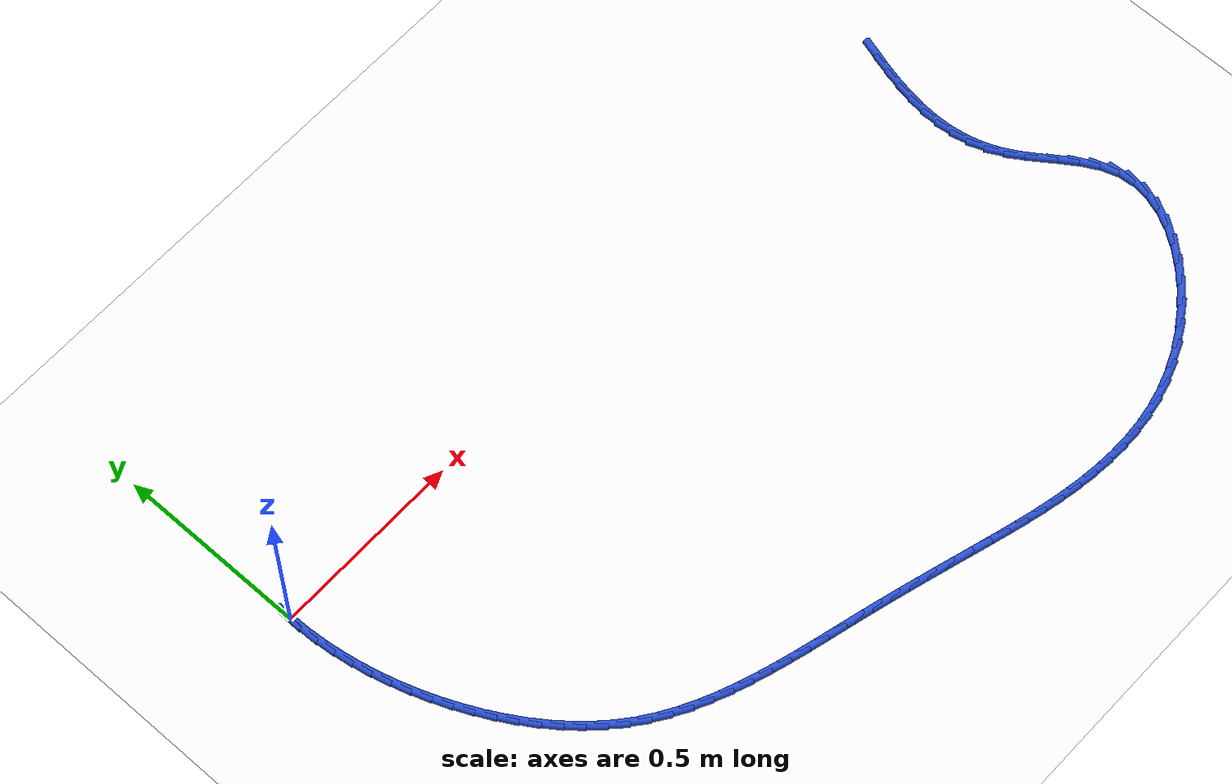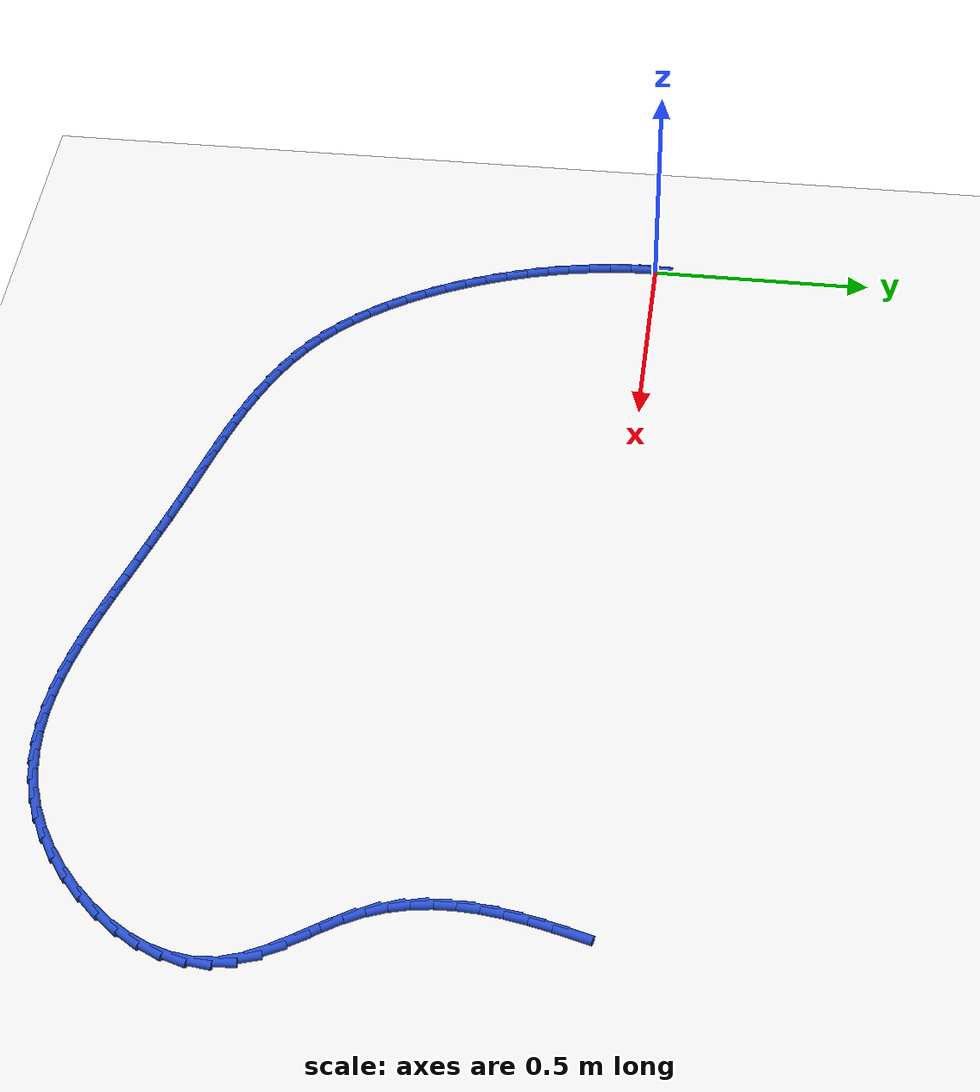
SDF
<sdf version="1.6">
 <world name="default">
  <model name="ground_plane">
   <static>1</static>
   <link name="link">
    <collision name="collision">
     <geometry><plane><normal>0 0 1</normal><size>100 100</size></plane></geometry>
     <surface><friction><ode><mu>100</mu><mu2>50</mu2></ode></friction></surface>
    </collision>
    <visual name="visual">
     <cast_shadows>0</cast_shadows>
     <geometry><plane><normal>0 0 1</normal><size>100 100</size></plane></geometry>
     <material>
      <script><uri>file://media/materials/scripts/gazebo.material</uri><name>Gazebo/WhiteGlow</name></script>
     </material>
    </visual>
   </link>
  </model>
  <model name="line">
   <link name="link_0">
    <pose>4.163336342344337e-17 -4.163336342344337e-17 0.01 0 1.57 1.5400447321798174</pose>
    <collision name="collision">
     <geometry><cylinder><radius>0.01</radius><length>0.08</length></cylinder></geometry>
    </collision>
    <visual name="visual">
     <material>
      <script><name>Gazebo/Blue</name><uri>file://media/materials/scripts/gazebo.material</uri></script>
     </material>
     <geometry><cylinder><radius>0.01</radius><length>0.08</length></cylinder></geometry>
    </visual>
   </link>
   <link name="link_76">
    <pose>2.0138386063199047 -0.006483982523473847 0.01 0 1.57 1.2808713230961957</pose>
    <collision name="collision">
     <geometry><cylinder><radius>0.01</radius><length>0.08</length></cylinder></geometry>
    </collision>
    <visual name="visual">
     <material>
      <script><name>Gazebo/Blue</name><uri>file://media/materials/scripts/gazebo.material</uri></script>
     </material>
     <geometry><cylinder><radius>0.01</radius><length>0.08</length></cylinder></geometry>
    </visual>
   </link>
   <link name="link_77">
    <pose>1.999571553621662 -0.054306861348182627 0.01 0 1.57 1.3183097221567153</pose>
    <collision name="collision">
     <geometry><cylinder><radius>0.01</radius><length>0.08</length></cylinder></geometry>
    </collision>
    <visual name="visual">
     <material>
      <script><name>Gazebo/Blue</name><uri>file://media/materials/scripts/gazebo.material</uri></script>
     </material>
     <geometry><cylinder><radius>0.01</radius><length>0.08</length></cylinder></geometry>
    </visual>
   </link>
   <link name="link_78">
    <pose>1.9874681464585988 -0.1012206851651751 0.01 0 1.57 1.3687286867723003</pose>
    <collision name="collision">
     <geometry><cylinder><radius>0.01</radius><length>0.08</length></cylinder></geometry>
    </collision>
    <visual name="visual">
     <material>
      <script><name>Gazebo/Blue</name><uri>file://media/materials/scripts/gazebo.material</uri></script>
     </material>
     <geometry><cylinder><radius>0.01</radius><length>0.08</length></cylinder></geometry>
    </visual>
   </link>
   <link name="link_79">
    <pose>1.9780312302830938 -0.14728508501709073 0.01 0 1.57 1.4332358566750991</pose>
    <collision name="collision">
     <geometry><cylinder><radius>0.01</radius><length>0.08</length></cylinder></geometry>
    </collision>
    <visual name="visual">
     <material>
      <script><name>Gazebo/Blue</name><uri>file://media/materials/scripts/gazebo.material</uri></script>
     </material>
     <geometry><cylinder><radius>0.01</radius><length>0.08</length></cylinder></geometry>
    </visual>
   </link>
   <link name="link_80">
    <pose>1.9717636505475253 -0.19255969194656558 0.01 0 1.57 1.51259677325692</pose>
    <collision name="collision">
     <geometry><cylinder><radius>0.01</radius><length>0.08</length></cylinder></geometry>
    </collision>
    <visual name="visual">
     <material>
      <script><name>Gazebo/Blue</name><uri>file://media/materials/scripts/gazebo.material</uri></script>
     </material>
     <geometry><cylinder><radius>0.01</radius><length>0.08</length></cylinder></geometry>
    </visual>
   </link>
   <link name="link_81">
    <pose>1.9691682527042726 -0.23710413699623897 0.01 0 1.57 -1.5348080290894706</pose>
    <collision name="collision">
     <geometry><cylinder><radius>0.01</radius><length>0.08</length></cylinder></geometry>
    </collision>
    <visual name="visual">
     <material>
      <script><name>Gazebo/Blue</name><uri>file://media/materials/scripts/gazebo.material</uri></script>
     </material>
     <geometry><cylinder><radius>0.01</radius><length>0.08</length></cylinder></geometry>
    </visual>
   </link>
   <link name="link_82">
    <pose>1.9707478822057145 -0.28097805120874786 0.01 0 1.57 -1.4271538708264282</pose>
    <collision name="collision">
     <geometry><cylinder><radius>0.01</radius><length>0.08</length></cylinder></geometry>
    </collision>
    <visual name="visual">
     <material>
      <script><name>Gazebo/Blue</name><uri>file://media/materials/scripts/gazebo.material</uri></script>
     </material>
     <geometry><cylinder><radius>0.01</radius><length>0.08</length></cylinder></geometry>
    </visual>
   </link>
   <link name="link_83">
    <pose>1.9770053845042295 -0.3242410656267294 0.01 0 1.57 -1.3091358136497435</pose>
    <collision name="collision">
     <geometry><cylinder><radius>0.01</radius><length>0.08</length></cylinder></geometry>
    </collision>
    <visual name="visual">
     <material>
      <script><name>Gazebo/Blue</name><uri>file://media/materials/scripts/gazebo.material</uri></script>
     </material>
     <geometry><cylinder><radius>0.01</radius><length>0.08</length></cylinder></geometry>
    </visual>
   </link>
   <link name="link_84">
    <pose>1.9884436050521967 -0.36695281129282253 0.01 0 1.57 -1.1855264503517295</pose>
    <collision name="collision">
     <geometry><cylinder><radius>0.01</radius><length>0.08</length></cylinder></geometry>
    </collision>
    <visual name="visual">
     <material>
      <script><name>Gazebo/Blue</name><uri>file://media/materials/scripts/gazebo.material</uri></script>
     </material>
     <geometry><cylinder><radius>0.01</radius><length>0.08</length></cylinder></geometry>
    </visual>
   </link>
   <link name="link_85">
    <pose>2.005565389301995 -0.4091729192496638 0.01 0 1.57 -1.062921221758552</pose>
    <collision name="collision">
     <geometry><cylinder><radius>0.01</radius><length>0.08</length></cylinder></geometry>
    </collision>
    <visual name="visual">
     <material>
      <script><name>Gazebo/Blue</name><uri>file://media/materials/scripts/gazebo.material</uri></script>
     </material>
     <geometry><cylinder><radius>0.01</radius><length>0.08</length></cylinder></geometry>
    </visual>
   </link>
   <link name="link_86">
    <pose>2.0288254391963587 -0.4509645255753192 0.01 0 1.57 -0.9749347400510502</pose>
    <collision name="collision">
     <geometry><cylinder><radius>0.01</radius><length>0.08</length></cylinder></geometry>
    </collision>
    <visual name="visual">
     <material>
      <script><name>Gazebo/Blue</name><uri>file://media/materials/scripts/gazebo.material</uri></script>
     </material>
     <geometry><cylinder><radius>0.01</radius><length>0.08</length></cylinder></geometry>
    </visual>
   </link>
   <link name="link_87">
    <pose>2.056998613192884 -0.49251306551072077 0.01 0 1.57 -0.9499197458881184</pose>
    <collision name="collision">
     <geometry><cylinder><radius>0.01</radius><length>0.08</length></cylinder></geometry>
    </collision>
    <visual name="visual">
     <material>
      <script><name>Gazebo/Blue</name><uri>file://media/materials/scripts/gazebo.material</uri></script>
     </material>
     <geometry><cylinder><radius>0.01</radius><length>0.08</length></cylinder></geometry>
    </visual>
   </link>
   <link name="link_88">
    <pose>2.086782457167427 -0.5341552107613947 0.01 0 1.57 -0.9842961640721551</pose>
    <collision name="collision">
     <geometry><cylinder><radius>0.01</radius><length>0.08</length></cylinder></geometry>
    </collision>
    <visual name="visual">
     <material>
      <script><name>Gazebo/Blue</name><uri>file://media/materials/scripts/gazebo.material</uri></script>
     </material>
     <geometry><cylinder><radius>0.01</radius><length>0.08</length></cylinder></geometry>
    </visual>
   </link>
   <link name="link_89">
    <pose>2.1147457540352805 -0.5762370074790149 0.01 0 1.57 -1.0835878134169386</pose>
    <collision name="collision">
     <geometry><cylinder><radius>0.01</radius><length>0.08</length></cylinder></geometry>
    </collision>
    <visual name="visual">
     <material>
      <script><name>Gazebo/Blue</name><uri>file://media/materials/scripts/gazebo.material</uri></script>
     </material>
     <geometry><cylinder><radius>0.01</radius><length>0.08</length></cylinder></geometry>
    </visual>
   </link>
   <link name="link_90">
    <pose>2.137457286711737 -0.6191045018152529 0.01 0 1.57 -1.262056328636429</pose>
    <collision name="collision">
     <geometry><cylinder><radius>0.01</radius><length>0.08</length></cylinder></geometry>
    </collision>
    <visual name="visual">
     <material>
      <script><name>Gazebo/Blue</name><uri>file://media/materials/scripts/gazebo.material</uri></script>
     </material>
     <geometry><cylinder><radius>0.01</radius><length>0.08</length></cylinder></geometry>
    </visual>
   </link>
   <link name="link_91">
    <pose>2.151490046479375 -0.6631027889027866 0.01 0 1.57 -1.5013290513289506</pose>
    <collision name="collision">
     <geometry><cylinder><radius>0.01</radius><length>0.08</length></cylinder></geometry>
    </collision>
    <visual name="visual">
     <material>
      <script><name>Gazebo/Blue</name><uri>file://media/materials/scripts/gazebo.material</uri></script>
     </material>
     <geometry><cylinder><radius>0.01</radius><length>0.08</length></cylinder></geometry>
    </visual>
   </link>
   <link name="link_92">
    <pose>2.154634954376019 -0.7083017325905194 0.01 0 1.57 1.4180276969786763</pose>
    <collision name="collision">
     <geometry><cylinder><radius>0.01</radius><length>0.08</length></cylinder></geometry>
    </collision>
    <visual name="visual">
     <material>
      <script><name>Gazebo/Blue</name><uri>file://media/materials/scripts/gazebo.material</uri></script>
     </material>
     <geometry><cylinder><radius>0.01</radius><length>0.08</length></cylinder></geometry>
    </visual>
   </link>
   <link name="link_93">
    <pose>2.1475809656261275 -0.7541162905916041 0.01 0 1.57 1.2315972203387082</pose>
    <collision name="collision">
     <geometry><cylinder><radius>0.01</radius><length>0.08</length></cylinder></geometry>
    </collision>
    <visual name="visual">
     <material>
      <script><name>Gazebo/Blue</name><uri>file://media/materials/scripts/gazebo.material</uri></script>
     </material>
     <geometry><cylinder><radius>0.01</radius><length>0.08</length></cylinder></geometry>
    </visual>
   </link>
   <link name="link_94">
    <pose>2.131438779992775 -0.7998661135702579 0.01 0 1.57 1.0788144934448627</pose>
    <collision name="collision">
     <geometry><cylinder><radius>0.01</radius><length>0.08</length></cylinder></geometry>
    </collision>
    <visual name="visual">
     <material>
      <script><name>Gazebo/Blue</name><uri>file://media/materials/scripts/gazebo.material</uri></script>
     </material>
     <geometry><cylinder><radius>0.01</radius><length>0.08</length></cylinder></geometry>
    </visual>
   </link>
   <link name="link_95">
    <pose>2.107319097239034 -0.844870852190695 0.01 0 1.57 0.952701599898569</pose>
    <collision name="collision">
     <geometry><cylinder><radius>0.01</radius><length>0.08</length></cylinder></geometry>
    </collision>
    <visual name="visual">
     <material>
      <script><name>Gazebo/Blue</name><uri>file://media/materials/scripts/gazebo.material</uri></script>
     </material>
     <geometry><cylinder><radius>0.01</radius><length>0.08</length></cylinder></geometry>
    </visual>
   </link>
   <link name="link_96">
    <pose>2.0763326171279792 -0.8884501571171297 0.01 0 1.57 0.8458101176707273</pose>
    <collision name="collision">
     <geometry><cylinder><radius>0.01</radius><length>0.08</length></cylinder></geometry>
    </collision>
    <visual name="visual">
     <material>
      <script><name>Gazebo/Blue</name><uri>file://media/materials/scripts/gazebo.material</uri></script>
     </material>
     <geometry><cylinder><radius>0.01</radius><length>0.08</length></cylinder></geometry>
    </visual>
   </link>
   <link name="link_97">
    <pose>2.0395900394226834 -0.9299236790137784 0.01 0 1.57 0.751685387845838</pose>
    <collision name="collision">
     <geometry><cylinder><radius>0.01</radius><length>0.08</length></cylinder></geometry>
    </collision>
    <visual name="visual">
     <material>
      <script><name>Gazebo/Blue</name><uri>file://media/materials/scripts/gazebo.material</uri></script>
     </material>
     <geometry><cylinder><radius>0.01</radius><length>0.08</length></cylinder></geometry>
    </visual>
   </link>
   <link name="link_98">
    <pose>1.9982020638862208 -0.9686110685448553 0.01 0 1.57 0.6649295341870509</pose>
    <collision name="collision">
     <geometry><cylinder><radius>0.01</radius><length>0.08</length></cylinder></geometry>
    </collision>
    <visual name="visual">
     <material>
      <script><name>Gazebo/Blue</name><uri>file://media/materials/scripts/gazebo.material</uri></script>
     </material>
     <geometry><cylinder><radius>0.01</radius><length>0.08</length></cylinder></geometry>
    </visual>
   </link>
   <link name="link_99">
    <pose>1.953279390281664 -1.0038319763745764 0.01 0 1.57 0.5807980334045063</pose>
    <collision name="collision">
     <geometry><cylinder><radius>0.01</radius><length>0.08</length></cylinder></geometry>
    </collision>
    <visual name="visual">
     <material>
      <script><name>Gazebo/Blue</name><uri>file://media/materials/scripts/gazebo.material</uri></script>
     </material>
     <geometry><cylinder><radius>0.01</radius><length>0.08</length></cylinder></geometry>
    </visual>
   </link>
   <link name="link_100">
    <pose>1.9059327183720867 -1.0349060531671563 0.01 0 1.57 0.49466436049739126</pose>
    <collision name="collision">
     <geometry><cylinder><radius>0.01</radius><length>0.08</length></cylinder></geometry>
    </collision>
    <visual name="visual">
     <material>
      <script><name>Gazebo/Blue</name><uri>file://media/materials/scripts/gazebo.material</uri></script>
     </material>
     <geometry><cylinder><radius>0.01</radius><length>0.08</length></cylinder></geometry>
    </visual>
   </link>
   <link name="link_101">
    <pose>1.857272695386237 -1.061153002820765 0.01 0 1.57 0.4035738150901792</pose>
    <collision name="collision">
     <geometry><cylinder><radius>0.01</radius><length>0.08</length></cylinder></geometry>
    </collision>
    <visual name="visual">
     <material>
      <script><name>Gazebo/Blue</name><uri>file://media/materials/scripts/gazebo.material</uri></script>
     </material>
     <geometry><cylinder><radius>0.01</radius><length>0.08</length></cylinder></geometry>
    </visual>
   </link>
   <link name="link_102">
    <pose>1.8081959895238555 -1.0821093579446397 0.01 0 1.57 0.3122304820940082</pose>
    <collision name="collision">
     <geometry><cylinder><radius>0.01</radius><length>0.08</length></cylinder></geometry>
    </collision>
    <visual name="visual">
     <material>
      <script><name>Gazebo/Blue</name><uri>file://media/materials/scripts/gazebo.material</uri></script>
     </material>
     <geometry><cylinder><radius>0.01</radius><length>0.08</length></cylinder></geometry>
    </visual>
   </link>
   <link name="link_103">
    <pose>1.7588981034614215 -1.0980221544966673 0.01 0 1.57 0.2238434965894827</pose>
    <collision name="collision">
     <geometry><cylinder><radius>0.01</radius><length>0.08</length></cylinder></geometry>
    </collision>
    <visual name="visual">
     <material>
      <script><name>Gazebo/Blue</name><uri>file://media/materials/scripts/gazebo.material</uri></script>
     </material>
     <geometry><cylinder><radius>0.01</radius><length>0.08</length></cylinder></geometry>
    </visual>
   </link>
   <link name="link_104">
    <pose>1.709431144583832 -1.1092837334040675 0.01 0 1.57 0.14030139185350568</pose>
    <collision name="collision">
     <geometry><cylinder><radius>0.01</radius><length>0.08</length></cylinder></geometry>
    </collision>
    <visual name="visual">
     <material>
      <script><name>Gazebo/Blue</name><uri>file://media/materials/scripts/gazebo.material</uri></script>
     </material>
     <geometry><cylinder><radius>0.01</radius><length>0.08</length></cylinder></geometry>
    </visual>
   </link>
   <link name="link_105">
    <pose>1.6598472202759793 -1.1162864355940585 0.01 0 1.57 0.06308322238533386</pose>
    <collision name="collision">
     <geometry><cylinder><radius>0.01</radius><length>0.08</length></cylinder></geometry>
    </collision>
    <visual name="visual">
     <material>
      <script><name>Gazebo/Blue</name><uri>file://media/materials/scripts/gazebo.material</uri></script>
     </material>
     <geometry><cylinder><radius>0.01</radius><length>0.08</length></cylinder></geometry>
    </visual>
   </link>
   <link name="link_106">
    <pose>1.6101984379227616 -1.119422601993859 0.01 0 1.57 -0.00680654064562891</pose>
    <collision name="collision">
     <geometry><cylinder><radius>0.01</radius><length>0.08</length></cylinder></geometry>
    </collision>
    <visual name="visual">
     <material>
      <script><name>Gazebo/Blue</name><uri>file://media/materials/scripts/gazebo.material</uri></script>
     </material>
     <geometry><cylinder><radius>0.01</radius><length>0.08</length></cylinder></geometry>
    </visual>
   </link>
   <link name="link_107">
    <pose>1.5605369049090716 -1.1190845735306878 0.01 0 1.57 -0.06880962311932522</pose>
    <collision name="collision">
     <geometry><cylinder><radius>0.01</radius><length>0.08</length></cylinder></geometry>
    </collision>
    <visual name="visual">
     <material>
      <script><name>Gazebo/Blue</name><uri>file://media/materials/scripts/gazebo.material</uri></script>
     </material>
     <geometry><cylinder><radius>0.01</radius><length>0.08</length></cylinder></geometry>
    </visual>
   </link>
   <link name="link_108">
    <pose>1.5109147286198057 -1.1156646911317631 0.01 0 1.57 -0.12272571644922026</pose>
    <collision name="collision">
     <geometry><cylinder><radius>0.01</radius><length>0.08</length></cylinder></geometry>
    </collision>
    <visual name="visual">
     <material>
      <script><name>Gazebo/Blue</name><uri>file://media/materials/scripts/gazebo.material</uri></script>
     </material>
     <geometry><cylinder><radius>0.01</radius><length>0.08</length></cylinder></geometry>
    </visual>
   </link>
   <link name="link_109">
    <pose>1.461384016439859 -1.1095552957243038 0.01 0 1.57 -0.16860177391432724</pose>
    <collision name="collision">
     <geometry><cylinder><radius>0.01</radius><length>0.08</length></cylinder></geometry>
    </collision>
    <visual name="visual">
     <material>
      <script><name>Gazebo/Blue</name><uri>file://media/materials/scripts/gazebo.material</uri></script>
     </material>
     <geometry><cylinder><radius>0.01</radius><length>0.08</length></cylinder></geometry>
    </visual>
   </link>
   <link name="link_110">
    <pose>1.4119968757541257 -1.101148728235528 0.01 0 1.57 -0.20662596588504087</pose>
    <collision name="collision">
     <geometry><cylinder><radius>0.01</radius><length>0.08</length></cylinder></geometry>
    </collision>
    <visual name="visual">
     <material>
      <script><name>Gazebo/Blue</name><uri>file://media/materials/scripts/gazebo.material</uri></script>
     </material>
     <geometry><cylinder><radius>0.01</radius><length>0.08</length></cylinder></geometry>
    </visual>
   </link>
   <link name="link_111">
    <pose>1.3628054139475019 -1.090837329592655 0.01 0 1.57 -0.23703985472201355</pose>
    <collision name="collision">
     <geometry><cylinder><radius>0.01</radius><length>0.08</length></cylinder></geometry>
    </collision>
    <visual name="visual">
     <material>
      <script><name>Gazebo/Blue</name><uri>file://media/materials/scripts/gazebo.material</uri></script>
     </material>
     <geometry><cylinder><radius>0.01</radius><length>0.08</length></cylinder></geometry>
    </visual>
   </link>
   <link name="link_112">
    <pose>1.3138617384048832 -1.0790134407229028 0.01 0 1.57 -0.26007188553902133</pose>
    <collision name="collision">
     <geometry><cylinder><radius>0.01</radius><length>0.08</length></cylinder></geometry>
    </collision>
    <visual name="visual">
     <material>
      <script><name>Gazebo/Blue</name><uri>file://media/materials/scripts/gazebo.material</uri></script>
     </material>
     <geometry><cylinder><radius>0.01</radius><length>0.08</length></cylinder></geometry>
    </visual>
   </link>
   <link name="link_113">
    <pose>1.2652179565111634 -1.0660694025534903 0.01 0 1.57 -0.27588951237043075</pose>
    <collision name="collision">
     <geometry><cylinder><radius>0.01</radius><length>0.08</length></cylinder></geometry>
    </collision>
    <visual name="visual">
     <material>
      <script><name>Gazebo/Blue</name><uri>file://media/materials/scripts/gazebo.material</uri></script>
     </material>
     <geometry><cylinder><radius>0.01</radius><length>0.08</length></cylinder></geometry>
    </visual>
   </link>
   <link name="link_114">
    <pose>1.2169261756512388 -1.052397556011636 0.01 0 1.57 -0.28456520336445834</pose>
    <collision name="collision">
     <geometry><cylinder><radius>0.01</radius><length>0.08</length></cylinder></geometry>
    </collision>
    <visual name="visual">
     <material>
      <script><name>Gazebo/Blue</name><uri>file://media/materials/scripts/gazebo.material</uri></script>
     </material>
     <geometry><cylinder><radius>0.01</radius><length>0.08</length></cylinder></geometry>
    </visual>
   </link>
   <link name="link_115">
    <pose>1.1690385032100032 -1.038390242024558 0.01 0 1.57 -0.28669461144794456</pose>
    <collision name="collision">
     <geometry><cylinder><radius>0.01</radius><length>0.08</length></cylinder></geometry>
    </collision>
    <visual name="visual">
     <material>
      <script><name>Gazebo/Blue</name><uri>file://media/materials/scripts/gazebo.material</uri></script>
     </material>
     <geometry><cylinder><radius>0.01</radius><length>0.08</length></cylinder></geometry>
    </visual>
   </link>
   <link name="link_116">
    <pose>1.1215801448052913 -1.024398730792975 0.01 0 1.57 -0.2857624226337017</pose>
    <collision name="collision">
     <geometry><cylinder><radius>0.01</radius><length>0.08</length></cylinder></geometry>
    </collision>
    <visual name="visual">
     <material>
      <script><name>Gazebo/Blue</name><uri>file://media/materials/scripts/gazebo.material</uri></script>
     </material>
     <geometry><cylinder><radius>0.01</radius><length>0.08</length></cylinder></geometry>
    </visual>
   </link>
   <link name="link_117">
    <pose>1.0744258778532911 -1.0105446349076153 0.01 0 1.57 -0.2829797228515165</pose>
    <collision name="collision">
     <geometry><cylinder><radius>0.01</radius><length>0.08</length></cylinder></geometry>
    </collision>
    <visual name="visual">
     <material>
      <script><name>Gazebo/Blue</name><uri>file://media/materials/scripts/gazebo.material</uri></script>
     </material>
     <geometry><cylinder><radius>0.01</radius><length>0.08</length></cylinder></geometry>
    </visual>
   </link>
   <link name="link_118">
    <pose>1.027398219362869 -0.9968697813863517 0.01 0 1.57 -0.2783554192672303</pose>
    <collision name="collision">
     <geometry><cylinder><radius>0.01</radius><length>0.08</length></cylinder></geometry>
    </collision>
    <visual name="visual">
     <material>
      <script><name>Gazebo/Blue</name><uri>file://media/materials/scripts/gazebo.material</uri></script>
     </material>
     <geometry><cylinder><radius>0.01</radius><length>0.08</length></cylinder></geometry>
    </visual>
   </link>
   <link name="link_119">
    <pose>0.9803196341667048 -0.9834159175900592 0.01 0 1.57 -0.27193329440389025</pose>
    <collision name="collision">
     <geometry><cylinder><radius>0.01</radius><length>0.08</length></cylinder></geometry>
    </collision>
    <visual name="visual">
     <material>
      <script><name>Gazebo/Blue</name><uri>file://media/materials/scripts/gazebo.material</uri></script>
     </material>
     <geometry><cylinder><radius>0.01</radius><length>0.08</length></cylinder></geometry>
    </visual>
   </link>
   <link name="link_120">
    <pose>0.9330125870974753 -0.9702247908796113 0.01 0 1.57 -0.2637923220171114</pose>
    <collision name="collision">
     <geometry><cylinder><radius>0.01</radius><length>0.08</length></cylinder></geometry>
    </collision>
    <visual name="visual">
     <material>
      <script><name>Gazebo/Blue</name><uri>file://media/materials/scripts/gazebo.material</uri></script>
     </material>
     <geometry><cylinder><radius>0.01</radius><length>0.08</length></cylinder></geometry>
    </visual>
   </link>
   <link name="link_121">
    <pose>0.8852995429878597 -0.9573381486158836 0.01 0 1.57 -0.25543765380786365</pose>
    <collision name="collision">
     <geometry><cylinder><radius>0.01</radius><length>0.08</length></cylinder></geometry>
    </collision>
    <visual name="visual">
     <material>
      <script><name>Gazebo/Blue</name><uri>file://media/materials/scripts/gazebo.material</uri></script>
     </material>
     <geometry><cylinder><radius>0.01</radius><length>0.08</length></cylinder></geometry>
    </visual>
   </link>
   <link name="link_122">
    <pose>0.8370697776238392 -0.9447433207163467 0.01 0 1.57 -0.2525585927208488</pose>
    <collision name="collision">
     <geometry><cylinder><radius>0.01</radius><length>0.08</length></cylinder></geometry>
    </collision>
    <visual name="visual">
     <material>
      <script><name>Gazebo/Blue</name><uri>file://media/materials/scripts/gazebo.material</uri></script>
     </material>
     <geometry><cylinder><radius>0.01</radius><length>0.08</length></cylinder></geometry>
    </visual>
   </link>
   <link name="link_123">
    <pose>0.7884856066624163 -0.9322052464425319 0.01 0 1.57 -0.25647250576948094</pose>
    <collision name="collision">
     <geometry><cylinder><radius>0.01</radius><length>0.08</length></cylinder></geometry>
    </collision>
    <visual name="visual">
     <material>
      <script><name>Gazebo/Blue</name><uri>file://media/materials/scripts/gazebo.material</uri></script>
     </material>
     <geometry><cylinder><radius>0.01</radius><length>0.08</length></cylinder></geometry>
    </visual>
   </link>
   <link name="link_124">
    <pose>0.7397790860314071 -0.9194320616868779 0.01 0 1.57 -0.2671421111266875</pose>
    <collision name="collision">
     <geometry><cylinder><radius>0.01</radius><length>0.08</length></cylinder></geometry>
    </collision>
    <visual name="visual">
     <material>
      <script><name>Gazebo/Blue</name><uri>file://media/materials/scripts/gazebo.material</uri></script>
     </material>
     <geometry><cylinder><radius>0.01</radius><length>0.08</length></cylinder></geometry>
    </visual>
   </link>
   <link name="link_125">
    <pose>0.6911822716836007 -0.9061319023214829 0.01 0 1.57 -0.2846458422304572</pose>
    <collision name="collision">
     <geometry><cylinder><radius>0.01</radius><length>0.08</length></cylinder></geometry>
    </collision>
    <visual name="visual">
     <material>
      <script><name>Gazebo/Blue</name><uri>file://media/materials/scripts/gazebo.material</uri></script>
     </material>
     <geometry><cylinder><radius>0.01</radius><length>0.08</length></cylinder></geometry>
    </visual>
   </link>
   <link name="link_126">
    <pose>0.6429272195717837 -0.892012904218445 0.01 0 1.57 -0.3091645747397078</pose>
    <collision name="collision">
     <geometry><cylinder><radius>0.01</radius><length>0.08</length></cylinder></geometry>
    </collision>
    <visual name="visual">
     <material>
      <script><name>Gazebo/Blue</name><uri>file://media/materials/scripts/gazebo.material</uri></script>
     </material>
     <geometry><cylinder><radius>0.01</radius><length>0.08</length></cylinder></geometry>
    </visual>
   </link>
   <link name="link_127">
    <pose>0.5952459856487458 -0.8767832032498625 0.01 0 1.57 -0.34096144177388554</pose>
    <collision name="collision">
     <geometry><cylinder><radius>0.01</radius><length>0.08</length></cylinder></geometry>
    </collision>
    <visual name="visual">
     <material>
      <script><name>Gazebo/Blue</name><uri>file://media/materials/scripts/gazebo.material</uri></script>
     </material>
     <geometry><cylinder><radius>0.01</radius><length>0.08</length></cylinder></geometry>
    </visual>
   </link>
   <link name="link_128">
    <pose>0.5483706258672738 -0.8601509352878333 0.01 0 1.57 -0.38035078024221153</pose>
    <collision name="collision">
     <geometry><cylinder><radius>0.01</radius><length>0.08</length></cylinder></geometry>
    </collision>
    <visual name="visual">
     <material>
      <script><name>Gazebo/Blue</name><uri>file://media/materials/scripts/gazebo.material</uri></script>
     </material>
     <geometry><cylinder><radius>0.01</radius><length>0.08</length></cylinder></geometry>
    </visual>
   </link>
   <link name="link_129">
    <pose>0.5025331961801562 -0.8418242362044552 0.01 0 1.57 -0.427651001465421</pose>
    <collision name="collision">
     <geometry><cylinder><radius>0.01</radius><length>0.08</length></cylinder></geometry>
    </collision>
    <visual name="visual">
     <material>
      <script><name>Gazebo/Blue</name><uri>file://media/materials/scripts/gazebo.material</uri></script>
     </material>
     <geometry><cylinder><radius>0.01</radius><length>0.08</length></cylinder></geometry>
    </visual>
   </link>
   <link name="link_130">
    <pose>0.45796575254018274 -0.8215112418718276 0.01 0 1.57 -0.48311597016300006</pose>
    <collision name="collision">
     <geometry><cylinder><radius>0.01</radius><length>0.08</length></cylinder></geometry>
    </collision>
    <visual name="visual">
     <material>
      <script><name>Gazebo/Blue</name><uri>file://media/materials/scripts/gazebo.material</uri></script>
     </material>
     <geometry><cylinder><radius>0.01</radius><length>0.08</length></cylinder></geometry>
    </visual>
   </link>
   <link name="link_131">
    <pose>0.4149003509001395 -0.7989200881620472 0.01 0 1.57 -0.5468416657889189</pose>
    <collision name="collision">
     <geometry><cylinder><radius>0.01</radius><length>0.08</length></cylinder></geometry>
    </collision>
    <visual name="visual">
     <material>
      <script><name>Gazebo/Blue</name><uri>file://media/materials/scripts/gazebo.material</uri></script>
     </material>
     <geometry><cylinder><radius>0.01</radius><length>0.08</length></cylinder></geometry>
    </visual>
   </link>
   <link name="link_132">
    <pose>0.3735690472128163 -0.7737589109472133 0.01 0 1.57 -0.6186513619535469</pose>
    <collision name="collision">
     <geometry><cylinder><radius>0.01</radius><length>0.08</length></cylinder></geometry>
    </collision>
    <visual name="visual">
     <material>
      <script><name>Gazebo/Blue</name><uri>file://media/materials/scripts/gazebo.material</uri></script>
     </material>
     <geometry><cylinder><radius>0.01</radius><length>0.08</length></cylinder></geometry>
    </visual>
   </link>
   <link name="link_133">
    <pose>0.3342038974309999 -0.7457358460994228 0.01 0 1.57 -0.6963901983632412</pose>
    <collision name="collision">
     <geometry><cylinder><radius>0.01</radius><length>0.08</length></cylinder></geometry>
    </collision>
    <visual name="visual">
     <material>
      <script><name>Gazebo/Blue</name><uri>file://media/materials/scripts/gazebo.material</uri></script>
     </material>
     <geometry><cylinder><radius>0.01</radius><length>0.08</length></cylinder></geometry>
    </visual>
   </link>
   <link name="link_134">
    <pose>0.29700572980779105 -0.7146331084227499 0.01 0 1.57 -0.7712255377050957</pose>
    <collision name="collision">
     <geometry><cylinder><radius>0.01</radius><length>0.08</length></cylinder></geometry>
    </collision>
    <visual name="visual">
     <material>
      <script><name>Gazebo/Blue</name><uri>file://media/materials/scripts/gazebo.material</uri></script>
     </material>
     <geometry><cylinder><radius>0.01</radius><length>0.08</length></cylinder></geometry>
    </visual>
   </link>
   <link name="link_135">
    <pose>0.2620128912102159 -0.6806183540975607 0.01 0 1.57 -0.8405342118050547</pose>
    <collision name="collision">
     <geometry><cylinder><radius>0.01</radius><length>0.08</length></cylinder></geometry>
    </collision>
    <visual name="visual">
     <material>
      <script><name>Gazebo/Blue</name><uri>file://media/materials/scripts/gazebo.material</uri></script>
     </material>
     <geometry><cylinder><radius>0.01</radius><length>0.08</length></cylinder></geometry>
    </visual>
   </link>
   <link name="link_136">
    <pose>0.22921105051252472 -0.6439842030217604 0.01 0 1.57 -0.904619318683641</pose>
    <collision name="collision">
     <geometry><cylinder><radius>0.01</radius><length>0.08</length></cylinder></geometry>
    </collision>
    <visual name="visual">
     <material>
      <script><name>Gazebo/Blue</name><uri>file://media/materials/scripts/gazebo.material</uri></script>
     </material>
     <geometry><cylinder><radius>0.01</radius><length>0.08</length></cylinder></geometry>
    </visual>
   </link>
   <link name="link_137">
    <pose>0.19858584929113088 -0.6050233398496996 0.01 0 1.57 -0.9639033597912965</pose>
    <collision name="collision">
     <geometry><cylinder><radius>0.01</radius><length>0.08</length></cylinder></geometry>
    </collision>
    <visual name="visual">
     <material>
      <script><name>Gazebo/Blue</name><uri>file://media/materials/scripts/gazebo.material</uri></script>
     </material>
     <geometry><cylinder><radius>0.01</radius><length>0.08</length></cylinder></geometry>
    </visual>
   </link>
   <link name="link_138">
    <pose>0.17012292912244725 -0.5640284492357284 0.01 0 1.57 -1.0188736204669029</pose>
    <collision name="collision">
     <geometry><cylinder><radius>0.01</radius><length>0.08</length></cylinder></geometry>
    </collision>
    <visual name="visual">
     <material>
      <script><name>Gazebo/Blue</name><uri>file://media/materials/scripts/gazebo.material</uri></script>
     </material>
     <geometry><cylinder><radius>0.01</radius><length>0.08</length></cylinder></geometry>
    </visual>
   </link>
   <link name="link_139">
    <pose>0.1438079315828856 -0.5212922158341949 0.01 0 1.57 -1.0700450964595718</pose>
    <collision name="collision">
     <geometry><cylinder><radius>0.01</radius><length>0.08</length></cylinder></geometry>
    </collision>
    <visual name="visual">
     <material>
      <script><name>Gazebo/Blue</name><uri>file://media/materials/scripts/gazebo.material</uri></script>
     </material>
     <geometry><cylinder><radius>0.01</radius><length>0.08</length></cylinder></geometry>
    </visual>
   </link>
   <link name="link_140">
    <pose>0.11962649824885942 -0.4771073242994505 0.01 0 1.57 -1.1179374353444067</pose>
    <collision name="collision">
     <geometry><cylinder><radius>0.01</radius><length>0.08</length></cylinder></geometry>
    </collision>
    <visual name="visual">
     <material>
      <script><name>Gazebo/Blue</name><uri>file://media/materials/scripts/gazebo.material</uri></script>
     </material>
     <geometry><cylinder><radius>0.01</radius><length>0.08</length></cylinder></geometry>
    </visual>
   </link>
   <link name="link_141">
    <pose>0.09756427069678052 -0.4317664592858432 0.01 0 1.57 -1.16311058654486</pose>
    <collision name="collision">
     <geometry><cylinder><radius>0.01</radius><length>0.08</length></cylinder></geometry>
    </collision>
    <visual name="visual">
     <material>
      <script><name>Gazebo/Blue</name><uri>file://media/materials/scripts/gazebo.material</uri></script>
     </material>
     <geometry><cylinder><radius>0.01</radius><length>0.08</length></cylinder></geometry>
    </visual>
   </link>
   <link name="link_142">
    <pose>0.07760814800829725 -0.3855591662123598 0.01 0 1.57 -1.2073641860510993</pose>
    <collision name="collision">
     <geometry><cylinder><radius>0.01</radius><length>0.08</length></cylinder></geometry>
    </collision>
    <visual name="visual">
     <material>
      <script><name>Gazebo/Blue</name><uri>file://media/materials/scripts/gazebo.material</uri></script>
     </material>
     <geometry><cylinder><radius>0.01</radius><length>0.08</length></cylinder></geometry>
    </visual>
   </link>
   <link name="link_143">
    <pose>0.059780867370730656 -0.3386855242711128 0.01 0 1.57 -1.2524236011667371</pose>
    <collision name="collision">
     <geometry><cylinder><radius>0.01</radius><length>0.08</length></cylinder></geometry>
    </collision>
    <visual name="visual">
     <material>
      <script><name>Gazebo/Blue</name><uri>file://media/materials/scripts/gazebo.material</uri></script>
     </material>
     <geometry><cylinder><radius>0.01</radius><length>0.08</length></cylinder></geometry>
    </visual>
   </link>
   <link name="link_144">
    <pose>0.044145327373035954 -0.2912453537537241 0.01 0 1.57 -1.2984968388166709</pose>
    <collision name="collision">
     <geometry><cylinder><radius>0.01</radius><length>0.08</length></cylinder></geometry>
    </collision>
    <visual name="visual">
     <material>
      <script><name>Gazebo/Blue</name><uri>file://media/materials/scripts/gazebo.material</uri></script>
     </material>
     <geometry><cylinder><radius>0.01</radius><length>0.08</length></cylinder></geometry>
    </visual>
   </link>
   <link name="link_145">
    <pose>0.03076655228621038 -0.24333316840036628 0.01 0 1.57 -1.3457045123755285</pose>
    <collision name="collision">
     <geometry><cylinder><radius>0.01</radius><length>0.08</length></cylinder></geometry>
    </collision>
    <visual name="visual">
     <material>
      <script><name>Gazebo/Blue</name><uri>file://media/materials/scripts/gazebo.material</uri></script>
     </material>
     <geometry><cylinder><radius>0.01</radius><length>0.08</length></cylinder></geometry>
    </visual>
   </link>
   <link name="link_146">
    <pose>0.019709566381250217 -0.19504348195120821 0.01 0 1.57 -1.3941576868906722</pose>
    <collision name="collision">
     <geometry><cylinder><radius>0.01</radius><length>0.08</length></cylinder></geometry>
    </collision>
    <visual name="visual">
     <material>
      <script><name>Gazebo/Blue</name><uri>file://media/materials/scripts/gazebo.material</uri></script>
     </material>
     <geometry><cylinder><radius>0.01</radius><length>0.08</length></cylinder></geometry>
    </visual>
   </link>
   <link name="link_147">
    <pose>0.011039393929152395 -0.1464708081464217 0.01 0 1.57 -1.443954555341062</pose>
    <collision name="collision">
     <geometry><cylinder><radius>0.01</radius><length>0.08</length></cylinder></geometry>
    </collision>
    <visual name="visual">
     <material>
      <script><name>Gazebo/Blue</name><uri>file://media/materials/scripts/gazebo.material</uri></script>
     </material>
     <geometry><cylinder><radius>0.01</radius><length>0.08</length></cylinder></geometry>
    </visual>
   </link>
   <link name="link_148">
    <pose>0.0048210592009137005 -0.0977096607261782 0.01 0 1.57 -1.4951765032322113</pose>
    <collision name="collision">
     <geometry><cylinder><radius>0.01</radius><length>0.08</length></cylinder></geometry>
    </collision>
    <visual name="visual">
     <material>
      <script><name>Gazebo/Blue</name><uri>file://media/materials/scripts/gazebo.material</uri></script>
     </material>
     <geometry><cylinder><radius>0.01</radius><length>0.08</length></cylinder></geometry>
    </visual>
   </link>
   <link name="link_149">
    <pose>0.001119586467530638 -0.048854553430646847 0.01 0 1.57 -1.5478836102269489</pose>
    <collision name="collision">
     <geometry><cylinder><radius>0.01</radius><length>0.08</length></cylinder></geometry>
    </collision>
    <visual name="visual">
     <material>
      <script><name>Gazebo/Blue</name><uri>file://media/materials/scripts/gazebo.material</uri></script>
     </material>
     <geometry><cylinder><radius>0.01</radius><length>0.08</length></cylinder></geometry>
    </visual>
   </link>
   <link name="link_150">
    <pose>4.5102810375396984e-17 -2.7755575615628914e-17 0.01 0 1.57 1.5394829358530155</pose>
    <collision name="collision">
     <geometry><cylinder><radius>0.01</radius><length>0.08</length></cylinder></geometry>
    </collision>
    <visual name="visual">
     <material>
      <script><name>Gazebo/Blue</name><uri>file://media/materials/scripts/gazebo.material</uri></script>
     </material>
     <geometry><cylinder><radius>0.01</radius><length>0.08</length></cylinder></geometry>
    </visual>
   </link>
  </model>
 </world>
</sdf>
